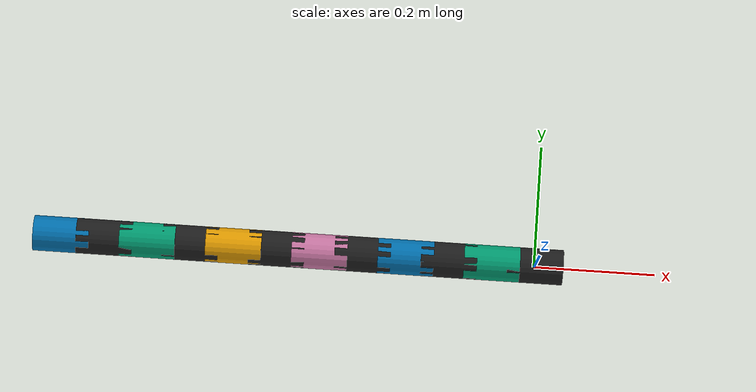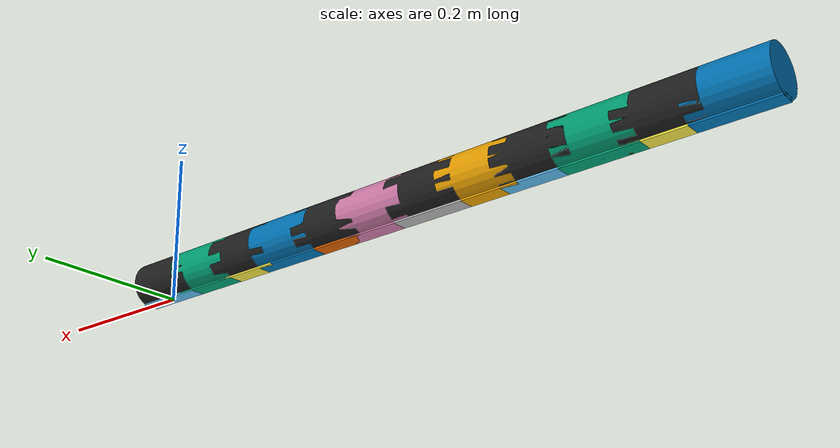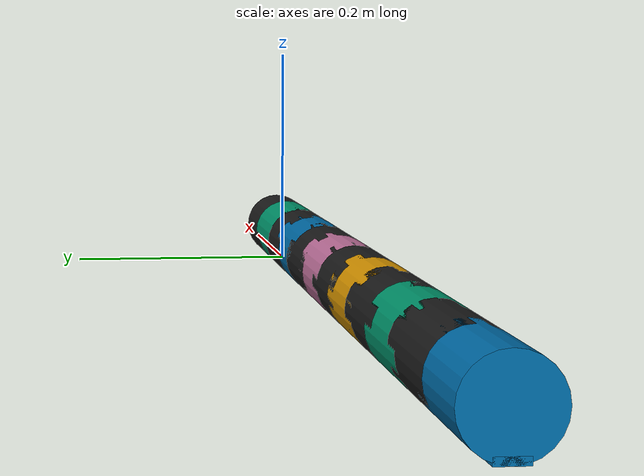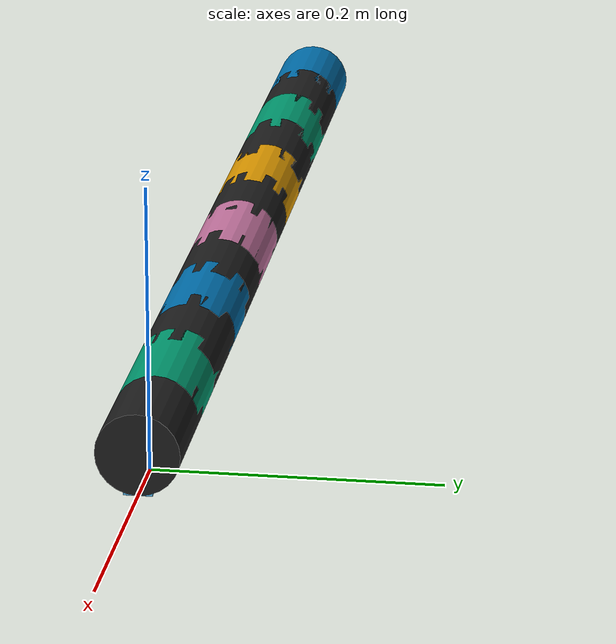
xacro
<?xml version="1.0"?>

<!-- Xacro -->
<!-- Author : Bongsub Song -->
<!-- Created Date : 2020 OCTOBER -->
<!-- E-mail : doorebong@gmail.com -->

<robot name="kiro_v2" xmlns:xacro="http://www.ros.org/wiki/xacro">

    <!-- Import all Gazebo-customization elements, including Gazebo colors -->
    <xacro:include filename="$(find kiro_sim)/urdf/kiro_v2.gazebo" />

    <!-- Import robot description, links and joints -->
    <xacro:include filename="$(find kiro_sim)/urdf/kiro_v2.urdf" />

    <!-- Transmission Macros -->
    <xacro:macro name="gazebo_trans" params="prefix">
        <transmission name="${prefix}_joint_trans">
            <type>transmission_interface/SimpleTransmission</type>
            <joint name="${prefix}_joint">
                <hardwareInterface>hardware_interface/EffortJointInterface</hardwareInterface>
            </joint>
            <actuator name="${prefix}_actuator">
                <hardwareInterface>hardware_interface/EffortJointInterface</hardwareInterface>
                <mechanicalReduction>1</mechanicalReduction>
            </actuator>
        </transmission>
    </xacro:macro>

    <xacro:gazebo_trans prefix="1"/>
    <xacro:gazebo_trans prefix="2"/>
    <xacro:gazebo_trans prefix="3"/>
    <xacro:gazebo_trans prefix="4"/>
    <xacro:gazebo_trans prefix="5"/>
    <xacro:gazebo_trans prefix="6"/>
    <xacro:gazebo_trans prefix="7"/>
    <xacro:gazebo_trans prefix="8"/>
    <xacro:gazebo_trans prefix="9"/>
    <xacro:gazebo_trans prefix="10"/>
    <xacro:gazebo_trans prefix="11"/>
<!-- Xacro END -->

</robot>

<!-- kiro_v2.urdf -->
<robot name="kiro_v2">

  <!-- URDF -->
  <!-- Author : Bongsub Song -->
  <!-- Created Date : 2020 OCTOBER -->
  <!-- E-mail : doorebong@gmail.com -->
  <link name="base_footprint"/>

  <joint name="base_joint" type="fixed">
    <parent link="base_footprint"/>
    <child link="1_head"/>
    <origin xyz="0.0 0.0 0.0" rpy="0.0 0.0 0.0"/>
  </joint>

  <link name="1_head">
    <inertial>
      <mass value="0.192"/>
      <origin rpy="0  0  0" xyz="0  0  0"/>
      <inertia ixx="390949e-9" ixy="-59e-9" ixz="346e-9" iyy="400197e-9" iyz="355e-9" izz="73725e-9"/>
    </inertial>
    <collision name="1_head_collision">
      <origin rpy="0       1.57079  0" xyz="0     0     0.029"/>
      <geometry>
        <cylinder length=".092" radius=".029"/>
      </geometry>
    </collision>
    <collision name="1_head_pad_collision">
      <origin rpy="0       1.57079  0" xyz="0      0      0.0025"/>
      <geometry>
        <box size="0.005 0.020 0.092"/>
      </geometry>
    </collision>
    <visual name="1_head_visual">
      <origin rpy="0       1.57079  0" xyz="0     0     0.029"/>
      <geometry>
        <cylinder length=".092" radius=".029"/>
      </geometry>
      <material name="light_black"/>
    </visual>
    <visual name="1_head_pad_visual">
      <origin rpy="0       1.57079  0" xyz="0      0      0.0025"/>
      <geometry>
        <box size="0.005 0.020 0.092"/>
      </geometry>
    </visual>
  </link>

  <link name="2_link">
    <inertial>
      <mass value="0.192"/>
      <origin rpy="0  0  0" xyz="0  0  0"/>
      <inertia ixx="390949e-9" ixy="-59e-9" ixz="346e-9" iyy="400197e-9" iyz="355e-9" izz="73725e-9"/>
    </inertial>
    <collision name="2_link_collision">
      <origin rpy="0  0  0" xyz="0     0    -0.046"/>
      <geometry>
        <cylinder length=".071" radius=".029"/>
      </geometry>
    </collision>
    <collision name="2_link_pad_collision">
      <origin rpy="0  0  0" xyz="0.0265  0     -0.046"/>
      <geometry>
        <box size="0.005 0.020 0.071"/>
      </geometry>
    </collision>
    <visual name="2_link_visual">
      <origin rpy="0  0  0" xyz="0       0      -0.03549"/>
      <geometry>
        <cylinder length=".092" radius=".029"/>
      </geometry>
    </visual>
    <visual name="2_link_pad_visual">
      <origin rpy="0  0  0" xyz="0.0265   0      -0.03549"/>
      <geometry>
        <box size="0.005 0.020 0.092"/>
      </geometry>
    </visual>
  </link>

  <link name="3_link">
    <inertial>
      <mass value="0.192"/>
      <origin rpy="0  0  0" xyz="0  0  0"/>
      <inertia ixx="390949e-9" ixy="-59e-9" ixz="346e-9" iyy="400197e-9" iyz="355e-9" izz="73725e-9"/>
    </inertial>
    <collision name="3_link_collision">
      <origin rpy="0  0  0" xyz="0     0    -0.046"/>
      <geometry>
        <cylinder length=".071" radius=".029"/>
      </geometry>
    </collision>
    <collision name="3_link_pad_collision">
      <origin rpy="0  0  0" xyz="0.0265  0     -0.046"/>
      <geometry>
        <box size="0.005 0.020 0.071"/>
      </geometry>
    </collision>
    <visual name="3_link_visual">
      <origin rpy="0  0  0" xyz="0       0      -0.03549"/>
      <geometry>
        <cylinder length=".092" radius=".029"/>
      </geometry>
      <material name="light_black"/>
    </visual>
    <visual name="3_link_pad_visual">
      <origin rpy="0  0  0" xyz="0.0265   0      -0.03549"/>
      <geometry>
        <box size="0.005 0.020 0.092"/>
      </geometry>
    </visual>
  </link>

  <link name="4_link">
    <inertial>
      <mass value="0.192"/>
      <origin rpy="0  0  0" xyz="0  0  0"/>
      <inertia ixx="390949e-9" ixy="-59e-9" ixz="346e-9" iyy="400197e-9" iyz="355e-9" izz="73725e-9"/>
    </inertial>
    <collision name="4_link_collision">
      <origin rpy="0  0  0" xyz="0     0    -0.046"/>
      <geometry>
        <cylinder length=".071" radius=".029"/>
      </geometry>
    </collision>
    <collision name="4_link_pad_collision">
      <origin rpy="0  0  0" xyz="0.0265  0     -0.046"/>
      <geometry>
        <box size="0.005 0.020 0.071"/>
      </geometry>
    </collision>
    <visual name="4_link_visual">
      <origin rpy="0  0  0" xyz="0       0      -0.03549"/>
      <geometry>
        <cylinder length=".092" radius=".029"/>
      </geometry>
    </visual>
    <visual name="4_link_pad_visual">
      <origin rpy="0  0  0" xyz="0.0265   0      -0.03549"/>
      <geometry>
        <box size="0.005 0.020 0.092"/>
      </geometry>
    </visual>
  </link>

  <link name="5_link">
    <inertial>
      <mass value="0.192"/>
      <origin rpy="0  0  0" xyz="0  0  0"/>
      <inertia ixx="390949e-9" ixy="-59e-9" ixz="346e-9" iyy="400197e-9" iyz="355e-9" izz="73725e-9"/>
    </inertial>
    <collision name="5_link_collision">
      <origin rpy="0  0  0" xyz="0     0    -0.046"/>
      <geometry>
        <cylinder length=".071" radius=".029"/>
      </geometry>
    </collision>
    <collision name="5_link_pad_collision">
      <origin rpy="0  0  0" xyz="0.0265  0     -0.046"/>
      <geometry>
        <box size="0.005 0.020 0.071"/>
      </geometry>
    </collision>
    <visual name="5_link_visual">
      <origin rpy="0  0  0" xyz="0       0      -0.03549"/>
      <geometry>
        <cylinder length=".092" radius=".029"/>
      </geometry>
      <material name="light_black"/>
    </visual>
    <visual name="5_link_pad_visual">
      <origin rpy="0  0  0" xyz="0.0265   0      -0.03549"/>
      <geometry>
        <box size="0.005 0.020 0.092"/>
      </geometry>
    </visual>
  </link>

  <link name="6_link">
    <inertial>
      <mass value="0.192"/>
      <origin rpy="0  0  0" xyz="0  0  0"/>
      <inertia ixx="390949e-9" ixy="-59e-9" ixz="346e-9" iyy="400197e-9" iyz="355e-9" izz="73725e-9"/>
    </inertial>
    <collision name="6_link_collision">
      <origin rpy="0  0  0" xyz="0     0    -0.046"/>
      <geometry>
        <cylinder length=".071" radius=".029"/>
      </geometry>
    </collision>
    <collision name="6_link_pad_collision">
      <origin rpy="0  0  0" xyz="0.0265  0     -0.046"/>
      <geometry>
        <box size="0.005 0.020 0.071"/>
      </geometry>
    </collision>
    <visual name="6_link_visual">
      <origin rpy="0  0  0" xyz="0       0      -0.03549"/>
      <geometry>
        <cylinder length=".092" radius=".029"/>
      </geometry>
    </visual>
    <visual name="6_link_pad_visual">
      <origin rpy="0  0  0" xyz="0.0265   0      -0.03549"/>
      <geometry>
        <box size="0.005 0.020 0.092"/>
      </geometry>
    </visual>
  </link>

  <link name="7_link">
    <inertial>
      <mass value="0.192"/>
      <origin rpy="0  0  0" xyz="0  0  0"/>
      <inertia ixx="390949e-9" ixy="-59e-9" ixz="346e-9" iyy="400197e-9" iyz="355e-9" izz="73725e-9"/>
    </inertial>
    <collision name="7_link_collision">
      <origin rpy="0  0  0" xyz="0     0    -0.046"/>
      <geometry>
        <cylinder length=".071" radius=".029"/>
      </geometry>
    </collision>
    <collision name="7_link_pad_collision">
      <origin rpy="0  0  0" xyz="0.0265  0     -0.046"/>
      <geometry>
        <box size="0.005 0.020 0.071"/>
      </geometry>
    </collision>
    <visual name="7_link_visual">
      <origin rpy="0  0  0" xyz="0       0      -0.03549"/>
      <geometry>
        <cylinder length=".092" radius=".029"/>
      </geometry>
      <material name="light_black"/>
    </visual>
    <visual name="7_link_pad_visual">
      <origin rpy="0  0  0" xyz="0.0265   0      -0.03549"/>
      <geometry>
        <box size="0.005 0.020 0.092"/>
      </geometry>
    </visual>
  </link>

  <link name="8_link">
    <inertial>
      <mass value="0.192"/>
      <origin rpy="0  0  0" xyz="0  0  0"/>
      <inertia ixx="390949e-9" ixy="-59e-9" ixz="346e-9" iyy="400197e-9" iyz="355e-9" izz="73725e-9"/>
    </inertial>
    <collision name="8_link_collision">
      <origin rpy="0  0  0" xyz="0     0    -0.046"/>
      <geometry>
        <cylinder length=".071" radius=".029"/>
      </geometry>
    </collision>
    <collision name="8_link_pad_collision">
      <origin rpy="0  0  0" xyz="0.0265  0     -0.046"/>
      <geometry>
        <box size="0.005 0.020 0.071"/>
      </geometry>
    </collision>
    <visual name="8_link_visual">
      <origin rpy="0  0  0" xyz="0       0      -0.03549"/>
      <geometry>
        <cylinder length=".092" radius=".029"/>
      </geometry>
    </visual>
    <visual name="8_link_pad_visual">
      <origin rpy="0  0  0" xyz="0.0265   0      -0.03549"/>
      <geometry>
        <box size="0.005 0.020 0.092"/>
      </geometry>
    </visual>
  </link>

  <link name="9_link">
    <inertial>
      <mass value="0.192"/>
      <origin rpy="0  0  0" xyz="0  0  0"/>
      <inertia ixx="390949e-9" ixy="-59e-9" ixz="346e-9" iyy="400197e-9" iyz="355e-9" izz="73725e-9"/>
    </inertial>
    <collision name="9_link_collision">
      <origin rpy="0  0  0" xyz="0     0    -0.046"/>
      <geometry>
        <cylinder length=".071" radius=".029"/>
      </geometry>
    </collision>
    <collision name="9_link_pad_collision">
      <origin rpy="0  0  0" xyz="0.0265  0     -0.046"/>
      <geometry>
        <box size="0.005 0.020 0.071"/>
      </geometry>
    </collision>
    <visual name="9_link_visual">
      <origin rpy="0  0  0" xyz="0       0      -0.03549"/>
      <geometry>
        <cylinder length=".092" radius=".029"/>
      </geometry>
      <material name="light_black"/>
    </visual>
    <visual name="9_link_pad_visual">
      <origin rpy="0  0  0" xyz="0.0265   0      -0.03549"/>
      <geometry>
        <box size="0.005 0.020 0.092"/>
      </geometry>
    </visual>
  </link>

  <link name="10_link">
    <inertial>
      <mass value="0.192"/>
      <origin rpy="0  0  0" xyz="0  0  0"/>
      <inertia ixx="390949e-9" ixy="-59e-9" ixz="346e-9" iyy="400197e-9" iyz="355e-9" izz="73725e-9"/>
    </inertial>
    <collision name="10_link_collision">
      <origin rpy="0  0  0" xyz="0     0    -0.046"/>
      <geometry>
        <cylinder length=".071" radius=".029"/>
      </geometry>
    </collision>
    <collision name="10_link_pad_collision">
      <origin rpy="0  0  0" xyz="0.0265  0     -0.046"/>
      <geometry>
        <box size="0.005 0.020 0.071"/>
      </geometry>
    </collision>
    <visual name="10_link_visual">
      <origin rpy="0  0  0" xyz="0       0      -0.03549"/>
      <geometry>
        <cylinder length=".092" radius=".029"/>
      </geometry>
    </visual>
    <visual name="10_link_pad_visual">
      <origin rpy="0  0  0" xyz="0.0265   0      -0.03549"/>
      <geometry>
        <box size="0.005 0.020 0.092"/>
      </geometry>
    </visual>
  </link>

  <link name="11_link">
    <inertial>
      <mass value="0.192"/>
      <origin rpy="0  0  0" xyz="0  0  0"/>
      <inertia ixx="390949e-9" ixy="-59e-9" ixz="346e-9" iyy="400197e-9" iyz="355e-9" izz="73725e-9"/>
    </inertial>
    <collision name="11_link_collision">
      <origin rpy="0  0  0" xyz="0     0    -0.046"/>
      <geometry>
        <cylinder length=".071" radius=".029"/>
      </geometry>
    </collision>
    <collision name="11_link_pad_collision">
      <origin rpy="0  0  0" xyz="0.0265  0     -0.046"/>
      <geometry>
        <box size="0.005 0.020 0.071"/>
      </geometry>
    </collision>
    <visual name="11_link_visual">
      <origin rpy="0  0  0" xyz="0       0      -0.03549"/>
      <geometry>
        <cylinder length=".092" radius=".029"/>
      </geometry>
      <material name="light_black"/>
    </visual>
    <visual name="11_link_pad_visual">
      <origin rpy="0  0  0" xyz="0.0265   0      -0.03549"/>
      <geometry>
        <box size="0.005 0.020 0.092"/>
      </geometry>
    </visual>
  </link>

  <link name="12_tail">
    <inertial>
      <mass value="0.192"/>
      <origin rpy="0  0  0" xyz="0  0  0"/>
      <inertia ixx="390949e-9" ixy="-59e-9" ixz="346e-9" iyy="400197e-9" iyz="355e-9" izz="73725e-9"/>
    </inertial>
    <collision name="12_tail_collision">
      <origin rpy="0  0  0" xyz="0     0    -0.046"/>
      <geometry>
        <cylinder length=".071" radius=".029"/>
      </geometry>
    </collision>
    <collision name="12_tail_pad_collision">
      <origin rpy="0  0  0" xyz="0.0265  0     -0.046"/>
      <geometry>
        <box size="0.005 0.020 0.071"/>
      </geometry>
    </collision>
    <visual name="12_tail_visual">
      <origin rpy="0  0  0" xyz="0       0      -0.03549"/>
      <geometry>
        <cylinder length=".092" radius=".029"/>
      </geometry>
    </visual>
    <visual name="12_tail_pad_visual">
      <origin rpy="0  0  0" xyz="0.0265   0      -0.03549"/>
      <geometry>
        <box size="0.005 0.020 0.092"/>
      </geometry>
    </visual>
  </link>

  <joint name="1_joint" type="revolute">
    <parent link="1_head"/>
    <child link="2_link"/>
    <origin rpy="0       1.57079  0" xyz="-0.03549  0       0.029"/>
    <axis xyz="0  1  0"/>
    <limit effort="1.70775" lower="-1.57079632679" upper="1.57079632679" velocity="4.2"/>
  </joint>

  <joint name="2_joint" type="revolute">
    <parent link="2_link"/>
    <child link="3_link"/>
    <origin rpy="0  0  0" xyz="0       0      -0.07099"/>
    <axis xyz="-1  0  0"/>
    <limit effort="1.70775" lower="-1.57079632679" upper="1.57079632679" velocity="4.2"/>
  </joint>

  <joint name="3_joint" type="revolute">
    <parent link="3_link"/>
    <child link="4_link"/>
    <origin rpy="0  0  0" xyz="0       0      -0.07099"/>
    <axis xyz="0  1  0"/>
    <limit effort="1.70775" lower="-1.57079632679" upper="1.57079632679" velocity="4.2"/>
  </joint>

  <joint name="4_joint" type="revolute">
    <parent link="4_link"/>
    <child link="5_link"/>
    <origin rpy="0  0  0" xyz="0       0      -0.07099"/>
    <axis xyz="-1  0  0"/>
    <limit effort="1.70775" lower="-1.57079632679" upper="1.57079632679" velocity="4.2"/>
  </joint>

  <joint name="5_joint" type="revolute">
    <parent link="5_link"/>
    <child link="6_link"/>
    <origin rpy="0  0  0" xyz="0       0      -0.07099"/>
    <axis xyz="0  1  0"/>
    <limit effort="1.70775" lower="-1.57079632679" upper="1.57079632679" velocity="4.2"/>
  </joint>

  <joint name="6_joint" type="revolute">
    <parent link="6_link"/>
    <child link="7_link"/>
    <origin rpy="0  0  0" xyz="0       0      -0.07099"/>
    <axis xyz="-1  0  0"/>
    <limit effort="1.70775" lower="-1.57079632679" upper="1.57079632679" velocity="4.2"/>
  </joint>

  <joint name="7_joint" type="revolute">
    <parent link="7_link"/>
    <child link="8_link"/>
    <origin rpy="0  0  0" xyz="0       0      -0.07099"/>
    <axis xyz="0  1  0"/>
    <limit effort="1.70775" lower="-1.57079632679" upper="1.57079632679" velocity="4.2"/>
  </joint>

  <joint name="8_joint" type="revolute">
    <parent link="8_link"/>
    <child link="9_link"/>
    <origin rpy="0  0  0" xyz="0       0      -0.07099"/>
    <axis xyz="-1  0  0"/>
    <limit effort="1.70775" lower="-1.57079632679" upper="1.57079632679" velocity="4.2"/>
  </joint>

  <joint name="9_joint" type="revolute">
    <parent link="9_link"/>
    <child link="10_link"/>
    <origin rpy="0  0  0" xyz="0       0      -0.07099"/>
    <axis xyz="0  1  0"/>
    <limit effort="1.70775" lower="-1.57079632679" upper="1.57079632679" velocity="4.2"/>
  </joint>

  <joint name="10_joint" type="revolute">
    <parent link="10_link"/>
    <child link="11_link"/>
    <origin rpy="0  0  0" xyz="0       0      -0.07099"/>
    <axis xyz="-1  0  0"/>
    <limit effort="1.70775" lower="-1.57079632679" upper="1.57079632679" velocity="4.2"/>
  </joint>

  <joint name="11_joint" type="revolute">
    <parent link="11_link"/>
    <child link="12_tail"/>
    <origin rpy="0  0  0" xyz="0       0      -0.07099"/>
    <axis xyz="0  1  0"/>
    <limit effort="1.70775" lower="-1.57079632679" upper="1.57079632679" velocity="4.2"/>
  </joint>

  <!-- URDF END -->

</robot>
